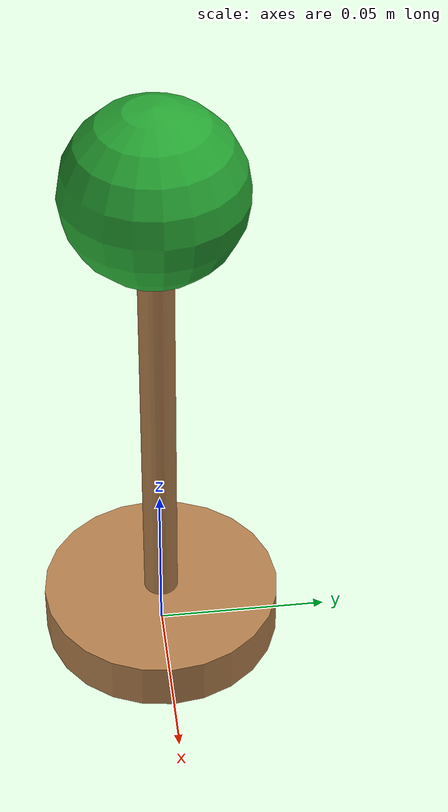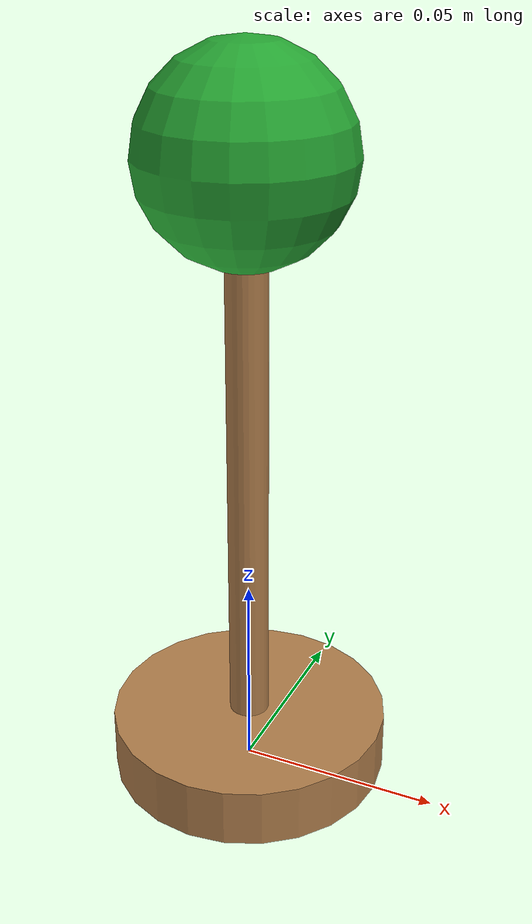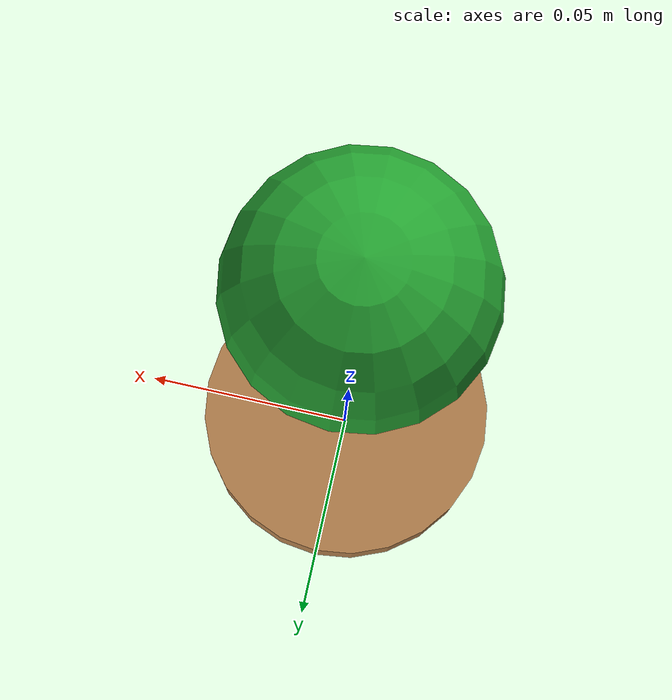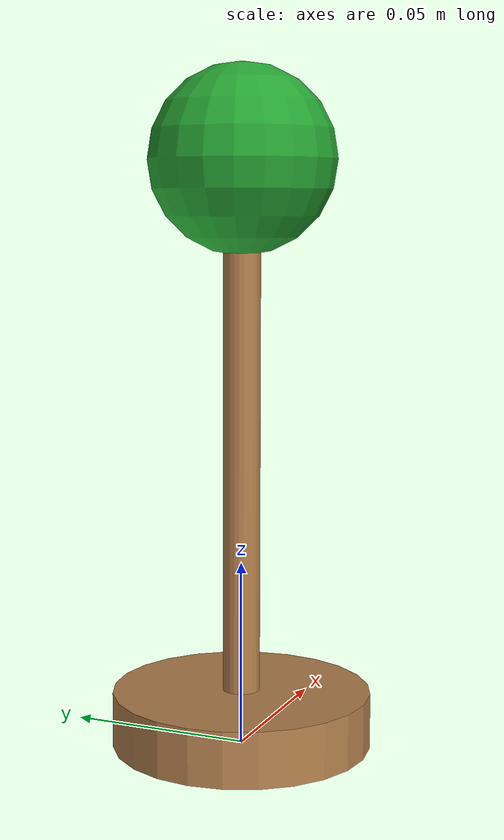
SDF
<?xml version="1.0"?>
<sdf version="1.6">
	<model name="mannequin">

        <link name="Pedestal">
        	<pose frame=''>0 0 0.0075 0 0 0</pose>
			<self_collide>0</self_collide>
			<kinematic>0</kinematic>
			<visual name="Pedestal_Visual">
				<geometry>
					<cylinder>
						<radius>0.035</radius>
						<length>0.015</length>
					</cylinder>
				</geometry>
				<material>
					<script>
						<uri>file://media/materials/scripts/gazebo.material</uri>
						<name>Gazebo/Wood</name>

						<ambient>1 1 1 1</ambient>
						<diffuse>1 1 1 1</diffuse>
						<specular>0.2 0.2 0.2 1</specular>
						<emissive>0 0 0 1</emissive>
					</script>
				</material>
				<cast_shadows>1</cast_shadows>
				<transparency>0</transparency>
			</visual>

			<collision name="Pedestal_Collision">
				<laser_retro>1</laser_retro>
				<max_contacts>10</max_contacts>
				<pose frame=''>0 0 0.1175 0 0 0</pose>
				<geometry>
					<cylinder>
						<radius>0.025</radius>
						<length>0.25</length>
					</cylinder>
				</geometry>
			</collision>

			<visual name="Body_Visual">
				<pose>0 0 0.075 0 0 0</pose>

				<geometry>
					<cylinder>
						<radius>0.005</radius>
						<length>0.15</length>
					</cylinder>
				</geometry>

				<material>
					<script>
						<uri>file://media/materials/scripts/gazebo.material</uri>
						<name>Gazebo/Wood</name>

						<ambient>1 1 1 1</ambient>
						<diffuse>1 1  11</diffuse>
						<specular>0.2 0.2 0.2 1</specular>
						<emissive>0 0 0 1</emissive>
					</script>
				</material>

				<cast_shadows>1</cast_shadows>
				<transparency>0</transparency>
			</visual>

			<visual name="Head_Visual">
				<pose>0 0 0.15 0 0 0</pose>

				<geometry>
					<sphere>
						<radius>0.025</radius>
					</sphere>

				</geometry>

				<material>
					<script>
						<uri>file://media/materials/scripts/gazebo.material</uri>
						<name>Gazebo/Green</name>

						<ambient>1 1 1 1</ambient>
						<diffuse>1 1  11</diffuse>
						<specular>0.2 0.2 0.2 1</specular>
						<emissive>0 0 0 1</emissive>
					</script>
				</material>

				<cast_shadows>1</cast_shadows>
				<transparency>0</transparency>
			</visual>

        </link>
	</model>
</sdf>
